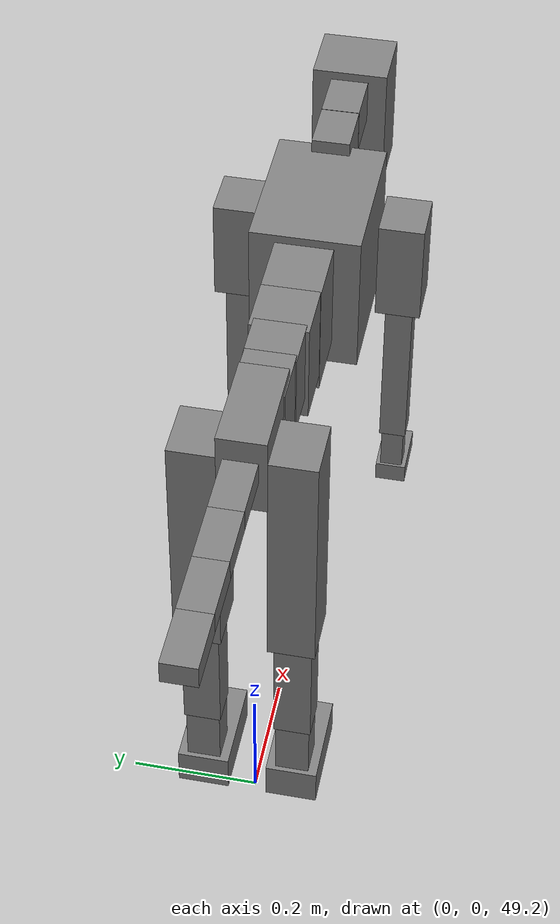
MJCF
<mujoco model="dog">

    <default>
        <joint armature="0.02" stiffness="1" damping="0.2" limited="true"/>
        <geom condim="3" friction="1 0.05 0.05" margin="0.01"/>
        <motor ctrllimited="true" ctrlrange="-1.0 1.0" forcelimited="true" gear="50"/>
    </default>

    <compiler inertiafromgeom="true" angle="radian"/>

    <option timestep="0.016" iterations="50" tolerance="1e-10" solver="Newton" jacobian="dense" cone="pyramidal"/>

    <size nconmax="20000" njmax="60000" nstack="5000000"/>
    <visual>
        <map force="0.1" zfar="30"/>
        <rgba haze="0.15 0.25 0.35 1"/>
        <quality shadowsize="2048"/>
        <global offwidth="800" offheight="800"/>
    </visual>

    <asset>
        <texture type="skybox" builtin="gradient" rgb1="0.3 0.5 0.7" rgb2="0 0 0" width="512" height="512"/>
        <texture name="texplane" type="2d" builtin="checker" rgb1=".2 .3 .4" rgb2=".1 0.15 0.2" width="512" height="512"
                 mark="cross" markrgb=".8 .8 .8"/>
        <texture name="texgeom" type="cube" builtin="flat" mark="cross" width="127" height="1278" rgb1="0.8 0.6 0.4"
                 rgb2="0.8 0.6 0.4" markrgb="1 1 1" random="0.01"/>

        <material name="matplane" reflectance="0.3" texture="texplane" texrepeat="1 1" texuniform="true"/>
        <material name="matgeom" texture="texgeom" texuniform="true" rgba="0.8 0.6 .4 1"/>
    </asset>

    <worldbody>
        <geom name="floor" pos="0 0 0" size="0 0 .25" type="plane" material="matplane" condim="3"/>

        <light directional="false" diffuse=".2 .2 .2" specular="0 0 0" pos="0 0 5" dir="0 0 -1" castshadow="false"/>
        <light mode="targetbodycom" target="torso" directional="false" diffuse=".8 .8 .8" specular="0.3 0.3 0.3"
               pos="0 0 4.0" dir="0 0 -1"/>

        <body name="root" pos="0 0 50">
            <freejoint name="root_1"/>
            <geom type="box" pos="0 0 -0.02" size="0.0774  0.0358  0.063" density="2030"/>

            <body name="spine1" pos="0.054 0 0">
                <joint name="spine1_y" axis="0 1 0" range="0 0.7" limited="true"/>
                <geom type="box" pos="0.02375 0 -0.03" size="0.04375  0.0375  0.05985" density="2030"/>

                <body name="spine2" pos="0.0612 0 0">
                    <joint name="spine2_y" axis="0 1 0" range="-0.15 0.15" limited="true"/>
                    <geom type="box" pos="0.03555  0  -0.04" size="0.04055  0.039  0.06615" density="2030"/>

                    <body name="spine3" pos="0.0730 0 0">
                        <joint name="spine3_y" axis="0 1 0" range="-0.15 0.15" limited="true"/>
                        <geom type="box" pos="0.03555  0  -0.057" size="0.04555  0.0445  0.081" density="2030"/>

                        <body name="spine4" pos="0.0780 0 0">
                            <joint name="spine4_y" axis="0 1 0" range="-0.15 0.15" limited="true"/>
                            <geom type="box" pos="0.05265  0  -0.07" size="0.05265  0.045  0.09135" density="2030"/>

                            <body name="torso" pos="0.1082 0 0">
                                <joint name="torso_y" axis="0 1 0" range="-0.15 0.15" limited="true"/>
                                <geom type="box" pos="0.11925  0  -0.085" size="0.11925  0.085  0.11745"
                                      density="2030"/>

                                <body name="neck1" pos="0.2160  0   0.0180">
                                    <joint name="neck1_y" axis="0 1 0" range="-1.2  -1" limited="true"/>
                                    <geom type="box" pos="0.0423  0  0" size="0.0423  0.03  0.036" density="2325"/>

                                    <body name="neck2" pos="0.0853  0  0">
                                        <joint name="neck2_y" axis="0 1 0" range="0.1  0" limited="true"/>
                                        <geom type="box" pos="0.0423  0  0" size="0.0423  0.03  0.036" density="2325"/>

                                        <body name="head" pos="0.0853  0  0">
                                            <joint name="head_y" axis="0 1 0" range="-0.3  -0.2" limited="true"/>
                                            <geom type="box" pos="0.0531  0  -0.055" size="0.0531  0.06  0.1044"
                                                  density="4030"/>

                                        </body>
                                    </body>
                                </body>

                                <body name="front_shoulder" pos="0.156  0   -0.0480">
                                    <joint name="front_shoulder_y" axis="0 1 0" range="-1 1.5" limited="true"/>
                                    <geom type="box" pos="0 0.13 -0.0578" size="0.0417  0.0356  0.0844" density="1158"/>
                                    <geom type="box" pos="0 -0.13 -0.0578" size="0.0417  0.0356  0.0844"
                                          density="1158"/>

                                    <body name="front_elbow" pos="0  0  -0.1156">
                                        <joint name="front_elbow_y" axis="0 1 0" range="-2 0" limited="true"/>
                                        <geom type="box" pos="0 0.13 -0.1536" size="0.0212  0.0217  0.1536"
                                              density="1081"/>
                                        <geom type="box" pos="0 -0.13 -0.1536" size="0.0212  0.0217  0.1536"
                                              density="1081"/>

                                        <body name="front_wrist" pos="0  0  -0.3072">
                                            <joint name="front_wrist_y" axis="0 1 0" range="-0.2 0" limited="true"/>
                                            <geom type="box" pos="0 0.13 -0.0443" size="0.0163  0.0181  0.0575"
                                                  density="1664"/>
                                            <geom type="box" pos="0 -0.13 -0.0443" size="0.0163  0.0181  0.0575"
                                                  density="1664"/>

                                            <body name="front_finger_end" pos="0  0  -0.0886">
                                                <joint name="front_finger_y" axis="0 1 0" range="-0.4 1"
                                                       limited="true"/>
                                                <geom type="box" pos="0.0249  0.13  -0.0015"
                                                      size="0.0456  0.0249  0.0165" density="1515"/>
                                                <geom type="box" pos="0.0249  -0.13  -0.0015"
                                                      size="0.0456  0.0249  0.0165" density="1515"/>

                                            </body>

                                        </body>
                                    </body>
                                </body>

                            </body>
                        </body>
                    </body>
                </body>
            </body>

            <body name="back_hip" pos="-0.03 0 -0.018">
                <joint name="back_hip_y" axis="0 1 0" range="-1.5 0.3" limited="true"/>
                <geom type="box" pos="0 0.07 -0.1686" size="0.0452  0.0355  0.1914" density="1154"/>
                <geom type="box" pos="0 -0.07 -0.1686" size="0.0452  0.0355  0.1914" density="1154"/>

                <body name="back_knee" pos="0  0  -0.3372">
                    <joint name="back_knee_y" axis="0 1 0" range="0 2.8" limited="true"/>
                    <geom type="box" pos="0 0.07 -0.1030" size="0.0288  0.0283  0.1185" density="1227"/>
                    <geom type="box" pos="0 -0.07 -0.1030" size="0.0288  0.0283  0.1185" density="1227"/>

                    <body name="back_ankle" pos="0  0  -0.2059">
                        <joint name="back_ankle_y" axis="0 1 0" range="-2.2 0" limited="true"/>
                        <geom type="box" pos="0 0.07 -0.0627" size="0.0259  0.0259  0.0740" density="1284"/>
                        <geom type="box" pos="0 -0.07 -0.0627" size="0.0259  0.0259  0.0740" density="1284"/>

                        <body name="back_toe_end" pos="0  0  -0.1254">
                            <joint name="back_toe_y" axis="0 1 0" range="-0.4 1" limited="true"/>
                            <geom type="box" pos="0.0399  0.07  -0.0158" size="0.0732  0.0399  0.0308" density="1515"/>
                            <geom type="box" pos="0.0399  -0.07  -0.0158" size="0.0732  0.0399  0.0308" density="1515"/>

                        </body>
                    </body>
                </body>
            </body>

            <body name="tail1" pos="-0.074 0 -0.006">
                <joint name="tail1_y" axis="0 1 0" range="-0.2 0.2" limited="true"/>
                <geom type="box" pos="-0.0536  0  0" size="0.045  0.025  0.0175" density="1587"/>

                <body name="tail2" pos="-0.09 0 0">
                    <joint name="tail2_y" axis="0 1 0" range="-0.2 0.2" limited="true"/>
                    <geom type="box" pos="-0.0536  0  0" size="0.045  0.025  0.0175" density="1587"/>

                    <body name="tail3" pos="-0.09 0 0">
                        <joint name="tail3_y" axis="0 1 0" range="-0.2 0.2" limited="true"/>
                        <geom type="box" pos="-0.0536  0  0" size="0.045  0.025  0.0175" density="1587"/>

                        <body name="tail4" pos="-0.09 0 0">
                            <joint name="tail4_y" axis="0 1 0" range="-0.2 0.2" limited="true"/>
                            <geom type="box" pos="-0.0536  0  0" size="0.045  0.025  0.0175" density="1587"/>

                        </body>
                    </body>
                </body>
            </body>
        </body>
    </worldbody>

    <actuator>
        <motor joint="spine1_y" forcerange="-150 150     "/>
        <motor joint="spine2_y" forcerange="-150 150     "/>
        <motor joint="spine3_y" forcerange="-150 150     "/>
        <motor joint="spine4_y" forcerange="-150 150     "/>
        <motor joint="torso_y" forcerange="-150 150     "/>
        <motor joint="neck1_y" forcerange="-100 100       "/>
        <motor joint="neck2_y" forcerange="-100 100       "/>
        <motor joint="head_y" forcerange="-150 150       "/>
        <motor joint="front_shoulder_y" forcerange="-194.55 142.92"/>
        <motor joint="front_elbow_y" forcerange="-148.72 109.10"/>
        <motor joint="front_wrist_y" forcerange="-70.63 73.87"/>
        <motor joint="front_finger_y" forcerange="-71.57 21.01"/>
        <motor joint="back_hip_y" forcerange="-375.24 297.44"/>
        <motor joint="back_knee_y" forcerange="-239.71 372.49"/>
        <motor joint="back_angle_y" forcerange="-172.76 142.28"/>
        <motor joint="back_toe_y" forcerange="-113.48 125.81"/>
        <motor joint="tail1_y" forcerange="-50 50     "/>
        <motor joint="tail2_y" forcerange="-50 50     "/>
        <motor joint="tail3_y" forcerange="-50 50     "/>
        <motor joint="tail4_y" forcerange="-50 50     "/>
    </actuator>
</mujoco>
